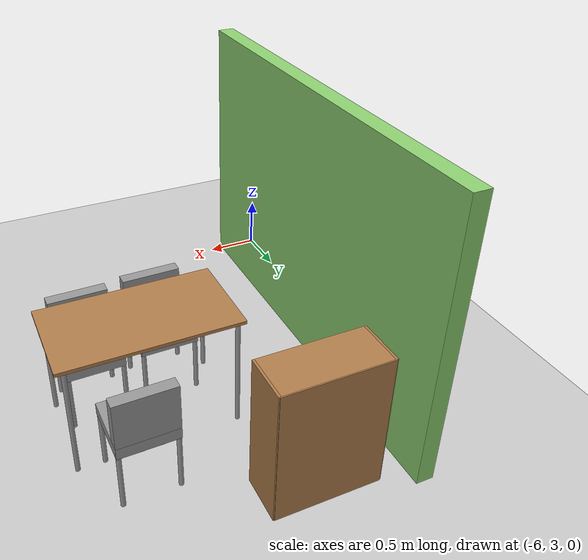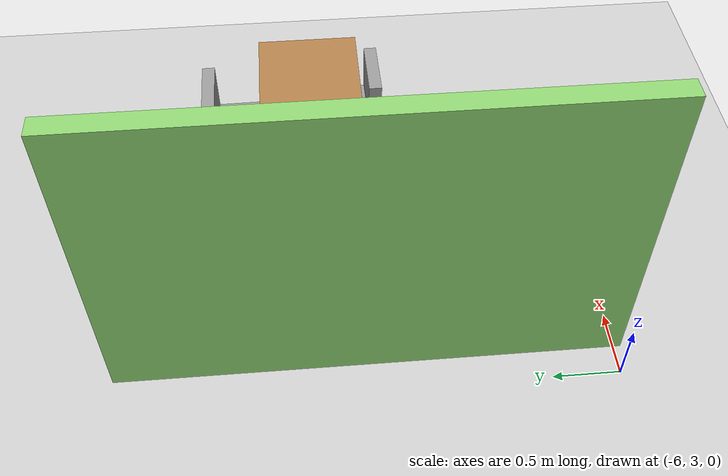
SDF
<sdf version="1.6">
 <world name="default">
  <model name="ground_plane">
   <static>1</static>
   <link name="link">
    <collision name="collision">
     <geometry><plane><normal>0 0 1</normal><size>100 100</size></plane></geometry>
     <surface>
      <contact><collide_bitmask>65535</collide_bitmask></contact>
      <friction><ode><mu>100</mu><mu2>50</mu2></ode></friction>
     </surface>
    </collision>
    <visual name="visual">
     <cast_shadows>0</cast_shadows>
     <geometry><plane><normal>0 0 1</normal><size>100 100</size></plane></geometry>
     <material>
      <script><uri>file://media/materials/scripts/gazebo.material</uri><name>Gazebo/Grey</name></script>
     </material>
    </visual>
   </link>
  </model>
  <model name="dunder_mifflin_scranton_full">
   <pose>4.5312 0.479645 0 0 -0 0</pose>
   <link name="Wall_19">
    <collision name="Wall_19_Collision">
     <geometry><box><size>3.75 0.15 2.5</size></box></geometry>
     <pose>0 0 1.25 0 -0 0</pose>
    </collision>
    <visual name="Wall_19_Visual">
     <pose>0 0 1.25 0 -0 0</pose>
     <geometry><box><size>3.75 0.15 2.5</size></box></geometry>
     <material>
      <script><uri>file://media/materials/scripts/gazebo.material</uri><name>Gazebo/Grey</name></script>
      <ambient>0.556863 0.823529 0.443137 1</ambient>
     </material>
     <meta><layer>0</layer></meta>
    </visual>
    <pose>-10.2322 4.33925 0 0 -0 -1.5708</pose>
   </link>
   <static>1</static>
  </model>
  <model name="table_9">
   <static>1</static>
   <link name="link">
    <collision name="surface">
     <pose>0 0 1 0 -0 0</pose>
     <geometry><box><size>1.5 0.8 0.03</size></box></geometry>
     <surface><friction><ode><mu>0.6</mu><mu2>0.6</mu2></ode></friction></surface>
    </collision>
    <visual name="visual1">
     <pose>0 0 1 0 -0 0</pose>
     <geometry><box><size>1.5 0.8 0.03</size></box></geometry>
     <material>
      <script><uri>file://media/materials/scripts/gazebo.material</uri><name>Gazebo/Wood</name></script>
     </material>
    </visual>
    <collision name="front_left_leg">
     <pose>0.68 0.38 0.5 0 -0 0</pose>
     <geometry><cylinder><radius>0.02</radius><length>1</length></cylinder></geometry>
    </collision>
    <visual name="front_left_leg">
     <pose>0.68 0.38 0.5 0 -0 0</pose>
     <geometry><cylinder><radius>0.02</radius><length>1</length></cylinder></geometry>
     <material>
      <script><uri>file://media/materials/scripts/gazebo.material</uri><name>Gazebo/Grey</name></script>
     </material>
    </visual>
    <collision name="front_right_leg">
     <pose>0.68 -0.38 0.5 0 -0 0</pose>
     <geometry><cylinder><radius>0.02</radius><length>1</length></cylinder></geometry>
    </collision>
    <visual name="front_right_leg">
     <pose>0.68 -0.38 0.5 0 -0 0</pose>
     <geometry><cylinder><radius>0.02</radius><length>1</length></cylinder></geometry>
     <material>
      <script><uri>file://media/materials/scripts/gazebo.material</uri><name>Gazebo/Grey</name></script>
     </material>
    </visual>
    <collision name="back_right_leg">
     <pose>-0.68 -0.38 0.5 0 -0 0</pose>
     <geometry><cylinder><radius>0.02</radius><length>1</length></cylinder></geometry>
    </collision>
    <visual name="back_right_leg">
     <pose>-0.68 -0.38 0.5 0 -0 0</pose>
     <geometry><cylinder><radius>0.02</radius><length>1</length></cylinder></geometry>
     <material>
      <script><uri>file://media/materials/scripts/gazebo.material</uri><name>Gazebo/Grey</name></script>
     </material>
    </visual>
    <collision name="back_left_leg">
     <pose>-0.68 0.38 0.5 0 -0 0</pose>
     <geometry><cylinder><radius>0.02</radius><length>1</length></cylinder></geometry>
    </collision>
    <visual name="back_left_leg">
     <pose>-0.68 0.38 0.5 0 -0 0</pose>
     <geometry><cylinder><radius>0.02</radius><length>1</length></cylinder></geometry>
     <material>
      <script><uri>file://media/materials/scripts/gazebo.material</uri><name>Gazebo/Grey</name></script>
     </material>
    </visual>
   </link>
   <pose>-3.98836 5.13001 0 0 -0 0</pose>
  </model>
  <model name="bookshelf">
   <static>1</static>
   <link name="link">
    <inertial><mass>1</mass></inertial>
    <collision name="back">
     <pose>0 0.005 0.6 0 -0 0</pose>
     <geometry><box><size>0.9 0.01 1.2</size></box></geometry>
    </collision>
    <visual name="visual1">
     <pose>0 0.005 0.6 0 -0 0</pose>
     <geometry><box><size>0.9 0.01 1.2</size></box></geometry>
     <material>
      <script><uri>file://media/materials/scripts/gazebo.material</uri><name>Gazebo/Wood</name></script>
     </material>
    </visual>
    <collision name="left_side">
     <pose>0.45 -0.195 0.6 0 -0 0</pose>
     <geometry><box><size>0.02 0.4 1.2</size></box></geometry>
    </collision>
    <visual name="visual2">
     <pose>0.45 -0.195 0.6 0 -0 0</pose>
     <geometry><box><size>0.02 0.4 1.2</size></box></geometry>
     <material>
      <script><uri>file://media/materials/scripts/gazebo.material</uri><name>Gazebo/Wood</name></script>
     </material>
    </visual>
    <collision name="right_side">
     <pose>-0.45 -0.195 0.6 0 -0 0</pose>
     <geometry><box><size>0.02 0.4 1.2</size></box></geometry>
    </collision>
    <visual name="visual3">
     <pose>-0.45 -0.195 0.6 0 -0 0</pose>
     <geometry><box><size>0.02 0.4 1.2</size></box></geometry>
     <material>
      <script><uri>file://media/materials/scripts/gazebo.material</uri><name>Gazebo/Wood</name></script>
     </material>
    </visual>
    <collision name="bottom">
     <pose>0 -0.195 0.03 0 -0 0</pose>
     <geometry><box><size>0.88 0.4 0.06</size></box></geometry>
    </collision>
    <visual name="visual4">
     <pose>0 -0.195 0.03 0 -0 0</pose>
     <geometry><box><size>0.88 0.4 0.06</size></box></geometry>
     <material>
      <script><uri>file://media/materials/scripts/gazebo.material</uri><name>Gazebo/Wood</name></script>
     </material>
    </visual>
    <collision name="top">
     <pose>0 -0.195 1.19 0 -0 0</pose>
     <geometry><box><size>0.88 0.4 0.02</size></box></geometry>
    </collision>
    <visual name="visual5">
     <pose>0 -0.195 1.19 0 -0 0</pose>
     <geometry><box><size>0.88 0.4 0.02</size></box></geometry>
     <material>
      <script><uri>file://media/materials/scripts/gazebo.material</uri><name>Gazebo/Wood</name></script>
     </material>
    </visual>
    <collision name="low_shelf">
     <pose>0 -0.195 0.43 0 -0 0</pose>
     <geometry><box><size>0.88 0.4 0.02</size></box></geometry>
    </collision>
    <visual name="visual6">
     <pose>0 -0.195 0.43 0 -0 0</pose>
     <geometry><box><size>0.88 0.4 0.02</size></box></geometry>
     <material>
      <script><uri>file://media/materials/scripts/gazebo.material</uri><name>Gazebo/Wood</name></script>
     </material>
    </visual>
    <collision name="high_shelf">
     <pose>0 -0.195 0.8 0 -0 0</pose>
     <geometry><box><size>0.88 0.4 0.02</size></box></geometry>
    </collision>
    <visual name="visual7">
     <pose>0 -0.195 0.8 0 -0 0</pose>
     <geometry><box><size>0.88 0.4 0.02</size></box></geometry>
     <material>
      <script><uri>file://media/materials/scripts/gazebo.material</uri><name>Gazebo/Wood</name></script>
     </material>
    </visual>
   </link>
   <pose>-4.93874 6.53859 0 0 -0 0</pose>
  </model>
  <model name="chair">
   <link name="link_0">
    <inertial>
     <mass>1</mass>
     <inertia><ixx>0.145833</ixx><ixy>0</ixy><ixz>0</ixz><iyy>0.145833</iyy><iyz>0</iyz><izz>0.125</izz></inertia>
    </inertial>
    <pose>-0.23 -0.19667 -0.280001 0 -0 0</pose>
    <visual name="visual">
     <geometry><cylinder><radius>0.02</radius><length>0.5</length></cylinder></geometry>
     <material>
      <lighting>1</lighting>
      <script><uri>file://media/materials/scripts/gazebo.material</uri><name>Gazebo/Grey</name></script>
      <shader type="vertex"><normal_map>__default__</normal_map></shader>
      <ambient>0.3 0.3 0.3 1</ambient>
      <diffuse>0.7 0.7 0.7 1</diffuse>
      <specular>0.01 0.01 0.01 1</specular>
      <emissive>0 0 0 1</emissive>
     </material>
    </visual>
    <collision name="collision">
     <geometry><cylinder><radius>0.02</radius><length>0.5</length></cylinder></geometry>
     <surface>
      <friction>
       <ode><mu>1</mu><mu2>1</mu2><fdir1>0 0 0</fdir1><slip1>0</slip1><slip2>0</slip2></ode>
       <torsional>
        <coefficient>1</coefficient>
        <patch_radius>0</patch_radius>
        <surface_radius>0</surface_radius>
        <use_patch_radius>1</use_patch_radius>
        <ode><slip>0</slip></ode>
       </torsional>
      </friction>
      <bounce><restitution_coefficient>0</restitution_coefficient><threshold>1e+06</threshold></bounce>
      <contact>
       <collide_without_contact>0</collide_without_contact>
       <collide_without_contact_bitmask>1</collide_without_contact_bitmask>
       <collide_bitmask>1</collide_bitmask>
       <ode>
        <soft_cfm>0</soft_cfm>
        <soft_erp>0.2</soft_erp>
        <kp>1e+13</kp>
        <kd>1</kd>
        <max_vel>0.01</max_vel>
        <min_depth>0</min_depth>
       </ode>
       <bullet>
        <split_impulse>1</split_impulse>
        <split_impulse_penetration_threshold>-0.01</split_impulse_penetration_threshold>
        <soft_cfm>0</soft_cfm>
        <soft_erp>0.2</soft_erp>
        <kp>1e+13</kp>
        <kd>1</kd>
       </bullet>
      </contact>
     </surface>
    </collision>
   </link>
   <link name="link_0_clone">
    <inertial>
     <mass>1</mass>
     <inertia><ixx>0.145833</ixx><ixy>0</ixy><ixz>0</ixz><iyy>0.145833</iyy><iyz>0</iyz><izz>0.125</izz></inertia>
    </inertial>
    <pose>0.23 -0.19667 -0.280001 0 -0 0</pose>
    <visual name="visual">
     <geometry><cylinder><radius>0.02</radius><length>0.5</length></cylinder></geometry>
     <material>
      <lighting>1</lighting>
      <script><uri>file://media/materials/scripts/gazebo.material</uri><name>Gazebo/Grey</name></script>
      <shader type="vertex"><normal_map>__default__</normal_map></shader>
      <ambient>0.3 0.3 0.3 1</ambient>
      <diffuse>0.7 0.7 0.7 1</diffuse>
      <specular>0.01 0.01 0.01 1</specular>
      <emissive>0 0 0 1</emissive>
     </material>
    </visual>
    <collision name="collision">
     <geometry><cylinder><radius>0.02</radius><length>0.5</length></cylinder></geometry>
     <surface>
      <friction>
       <ode><mu>1</mu><mu2>1</mu2><fdir1>0 0 0</fdir1><slip1>0</slip1><slip2>0</slip2></ode>
       <torsional>
        <coefficient>1</coefficient>
        <patch_radius>0</patch_radius>
        <surface_radius>0</surface_radius>
        <use_patch_radius>1</use_patch_radius>
        <ode><slip>0</slip></ode>
       </torsional>
      </friction>
      <bounce><restitution_coefficient>0</restitution_coefficient><threshold>1e+06</threshold></bounce>
      <contact>
       <collide_without_contact>0</collide_without_contact>
       <collide_without_contact_bitmask>1</collide_without_contact_bitmask>
       <collide_bitmask>1</collide_bitmask>
       <ode>
        <soft_cfm>0</soft_cfm>
        <soft_erp>0.2</soft_erp>
        <kp>1e+13</kp>
        <kd>1</kd>
        <max_vel>0.01</max_vel>
        <min_depth>0</min_depth>
       </ode>
       <bullet>
        <split_impulse>1</split_impulse>
        <split_impulse_penetration_threshold>-0.01</split_impulse_penetration_threshold>
        <soft_cfm>0</soft_cfm>
        <soft_erp>0.2</soft_erp>
        <kp>1e+13</kp>
        <kd>1</kd>
       </bullet>
      </contact>
     </surface>
    </collision>
   </link>
   <link name="link_0_clone_0">
    <inertial>
     <mass>1</mass>
     <inertia><ixx>0.145833</ixx><ixy>0</ixy><ixz>0</ixz><iyy>0.145833</iyy><iyz>0</iyz><izz>0.125</izz></inertia>
    </inertial>
    <pose>0.23 0.26333 -0.280001 0 -0 0</pose>
    <visual name="visual">
     <geometry><cylinder><radius>0.02</radius><length>0.5</length></cylinder></geometry>
     <material>
      <lighting>1</lighting>
      <script><uri>file://media/materials/scripts/gazebo.material</uri><name>Gazebo/Grey</name></script>
      <shader type="vertex"><normal_map>__default__</normal_map></shader>
      <ambient>0.3 0.3 0.3 1</ambient>
      <diffuse>0.7 0.7 0.7 1</diffuse>
      <specular>0.01 0.01 0.01 1</specular>
      <emissive>0 0 0 1</emissive>
     </material>
    </visual>
    <collision name="collision">
     <geometry><cylinder><radius>0.02</radius><length>0.5</length></cylinder></geometry>
     <surface>
      <friction>
       <ode><mu>1</mu><mu2>1</mu2><fdir1>0 0 0</fdir1><slip1>0</slip1><slip2>0</slip2></ode>
       <torsional>
        <coefficient>1</coefficient>
        <patch_radius>0</patch_radius>
        <surface_radius>0</surface_radius>
        <use_patch_radius>1</use_patch_radius>
        <ode><slip>0</slip></ode>
       </torsional>
      </friction>
      <bounce><restitution_coefficient>0</restitution_coefficient><threshold>1e+06</threshold></bounce>
      <contact>
       <collide_without_contact>0</collide_without_contact>
       <collide_without_contact_bitmask>1</collide_without_contact_bitmask>
       <collide_bitmask>1</collide_bitmask>
       <ode>
        <soft_cfm>0</soft_cfm>
        <soft_erp>0.2</soft_erp>
        <kp>1e+13</kp>
        <kd>1</kd>
        <max_vel>0.01</max_vel>
        <min_depth>0</min_depth>
       </ode>
       <bullet>
        <split_impulse>1</split_impulse>
        <split_impulse_penetration_threshold>-0.01</split_impulse_penetration_threshold>
        <soft_cfm>0</soft_cfm>
        <soft_erp>0.2</soft_erp>
        <kp>1e+13</kp>
        <kd>1</kd>
       </bullet>
      </contact>
     </surface>
    </collision>
   </link>
   <link name="link_0_clone_1">
    <inertial>
     <mass>1</mass>
     <inertia><ixx>0.145833</ixx><ixy>0</ixy><ixz>0</ixz><iyy>0.145833</iyy><iyz>0</iyz><izz>0.125</izz></inertia>
    </inertial>
    <pose>-0.23 0.26333 -0.280001 0 -0 0</pose>
    <visual name="visual">
     <geometry><cylinder><radius>0.02</radius><length>0.5</length></cylinder></geometry>
     <material>
      <lighting>1</lighting>
      <script><uri>file://media/materials/scripts/gazebo.material</uri><name>Gazebo/Grey</name></script>
      <shader type="vertex"><normal_map>__default__</normal_map></shader>
      <ambient>0.3 0.3 0.3 1</ambient>
      <diffuse>0.7 0.7 0.7 1</diffuse>
      <specular>0.01 0.01 0.01 1</specular>
      <emissive>0 0 0 1</emissive>
     </material>
    </visual>
    <collision name="collision">
     <geometry><cylinder><radius>0.02</radius><length>0.5</length></cylinder></geometry>
     <surface>
      <friction>
       <ode><mu>1</mu><mu2>1</mu2><fdir1>0 0 0</fdir1><slip1>0</slip1><slip2>0</slip2></ode>
       <torsional>
        <coefficient>1</coefficient>
        <patch_radius>0</patch_radius>
        <surface_radius>0</surface_radius>
        <use_patch_radius>1</use_patch_radius>
        <ode><slip>0</slip></ode>
       </torsional>
      </friction>
      <bounce><restitution_coefficient>0</restitution_coefficient><threshold>1e+06</threshold></bounce>
      <contact>
       <collide_without_contact>0</collide_without_contact>
       <collide_without_contact_bitmask>1</collide_without_contact_bitmask>
       <collide_bitmask>1</collide_bitmask>
       <ode>
        <soft_cfm>0</soft_cfm>
        <soft_erp>0.2</soft_erp>
        <kp>1e+13</kp>
        <kd>1</kd>
        <max_vel>0.01</max_vel>
        <min_depth>0</min_depth>
       </ode>
       <bullet>
        <split_impulse>1</split_impulse>
        <split_impulse_penetration_threshold>-0.01</split_impulse_penetration_threshold>
        <soft_cfm>0</soft_cfm>
        <soft_erp>0.2</soft_erp>
        <kp>1e+13</kp>
        <kd>1</kd>
       </bullet>
      </contact>
     </surface>
    </collision>
   </link>
   <link name="link_2">
    <inertial>
     <mass>1</mass>
     <inertia>
      <ixx>0.166667</ixx>
      <ixy>0</ixy>
      <ixz>0</ixz>
      <iyy>0.166667</iyy>
      <iyz>0</iyz>
      <izz>0.166667</izz>
     </inertia>
    </inertial>
    <pose>0 0.03333 0.019999 0 -0 0</pose>
    <visual name="visual">
     <geometry><box><size>0.5 0.5 0.1</size></box></geometry>
     <material>
      <lighting>1</lighting>
      <script><uri>file://media/materials/scripts/gazebo.material</uri><name>Gazebo/Grey</name></script>
      <shader type="vertex"><normal_map>__default__</normal_map></shader>
      <ambient>0.3 0.3 0.3 1</ambient>
      <diffuse>0.7 0.7 0.7 1</diffuse>
      <specular>0.01 0.01 0.01 1</specular>
      <emissive>0 0 0 1</emissive>
     </material>
    </visual>
    <collision name="collision">
     <geometry><box><size>0.5 0.5 0.1</size></box></geometry>
     <surface>
      <friction>
       <ode><mu>1</mu><mu2>1</mu2><fdir1>0 0 0</fdir1><slip1>0</slip1><slip2>0</slip2></ode>
       <torsional>
        <coefficient>1</coefficient>
        <patch_radius>0</patch_radius>
        <surface_radius>0</surface_radius>
        <use_patch_radius>1</use_patch_radius>
        <ode><slip>0</slip></ode>
       </torsional>
      </friction>
      <bounce><restitution_coefficient>0</restitution_coefficient><threshold>1e+06</threshold></bounce>
      <contact>
       <collide_without_contact>0</collide_without_contact>
       <collide_without_contact_bitmask>1</collide_without_contact_bitmask>
       <collide_bitmask>1</collide_bitmask>
       <ode>
        <soft_cfm>0</soft_cfm>
        <soft_erp>0.2</soft_erp>
        <kp>1e+13</kp>
        <kd>1</kd>
        <max_vel>0.01</max_vel>
        <min_depth>0</min_depth>
       </ode>
       <bullet>
        <split_impulse>1</split_impulse>
        <split_impulse_penetration_threshold>-0.01</split_impulse_penetration_threshold>
        <soft_cfm>0</soft_cfm>
        <soft_erp>0.2</soft_erp>
        <kp>1e+13</kp>
        <kd>1</kd>
       </bullet>
      </contact>
     </surface>
    </collision>
   </link>
   <link name="link_2_clone">
    <inertial>
     <mass>1</mass>
     <inertia>
      <ixx>0.166667</ixx>
      <ixy>0</ixy>
      <ixz>0</ixz>
      <iyy>0.166667</iyy>
      <iyz>0</iyz>
      <izz>0.166667</izz>
     </inertia>
    </inertial>
    <pose>0 -0.166646 0.220004 1.5707 -0 0</pose>
    <visual name="visual">
     <geometry><box><size>0.5 0.5 0.1</size></box></geometry>
     <material>
      <lighting>1</lighting>
      <script><uri>file://media/materials/scripts/gazebo.material</uri><name>Gazebo/Grey</name></script>
      <shader type="vertex"><normal_map>__default__</normal_map></shader>
      <ambient>0.3 0.3 0.3 1</ambient>
      <diffuse>0.7 0.7 0.7 1</diffuse>
      <specular>0.01 0.01 0.01 1</specular>
      <emissive>0 0 0 1</emissive>
     </material>
    </visual>
    <collision name="collision">
     <geometry><box><size>0.5 0.5 0.1</size></box></geometry>
     <surface>
      <friction>
       <ode><mu>1</mu><mu2>1</mu2><fdir1>0 0 0</fdir1><slip1>0</slip1><slip2>0</slip2></ode>
       <torsional>
        <coefficient>1</coefficient>
        <patch_radius>0</patch_radius>
        <surface_radius>0</surface_radius>
        <use_patch_radius>1</use_patch_radius>
        <ode><slip>0</slip></ode>
       </torsional>
      </friction>
      <bounce><restitution_coefficient>0</restitution_coefficient><threshold>1e+06</threshold></bounce>
      <contact>
       <collide_without_contact>0</collide_without_contact>
       <collide_without_contact_bitmask>1</collide_without_contact_bitmask>
       <collide_bitmask>1</collide_bitmask>
       <ode>
        <soft_cfm>0</soft_cfm>
        <soft_erp>0.2</soft_erp>
        <kp>1e+13</kp>
        <kd>1</kd>
        <max_vel>0.01</max_vel>
        <min_depth>0</min_depth>
       </ode>
       <bullet>
        <split_impulse>1</split_impulse>
        <split_impulse_penetration_threshold>-0.01</split_impulse_penetration_threshold>
        <soft_cfm>0</soft_cfm>
        <soft_erp>0.2</soft_erp>
        <kp>1e+13</kp>
        <kd>1</kd>
       </bullet>
      </contact>
     </surface>
    </collision>
   </link>
   <joint name="link_0_clone_JOINT_2" type="fixed">
    <parent>link_2</parent>
    <child>link_0_clone</child>
    <physics>
     <ode><limit><cfm>0</cfm><erp>0.2</erp></limit><suspension><cfm>0</cfm><erp>0.2</erp></suspension></ode>
    </physics>
   </joint>
   <joint name="link_2_JOINT_1" type="fixed">
    <parent>link_2</parent>
    <child>link_0</child>
    <physics>
     <ode><limit><cfm>0</cfm><erp>0.2</erp></limit><suspension><cfm>0</cfm><erp>0.2</erp></suspension></ode>
    </physics>
   </joint>
   <joint name="link_2_JOINT_3" type="fixed">
    <parent>link_2</parent>
    <child>link_0_clone_0</child>
    <physics>
     <ode><limit><cfm>0</cfm><erp>0.2</erp></limit><suspension><cfm>0</cfm><erp>0.2</erp></suspension></ode>
    </physics>
   </joint>
   <joint name="link_2_JOINT_4" type="fixed">
    <parent>link_2</parent>
    <child>link_0_clone_1</child>
    <physics>
     <ode><limit><cfm>0</cfm><erp>0.2</erp></limit><suspension><cfm>0</cfm><erp>0.2</erp></suspension></ode>
    </physics>
   </joint>
   <joint name="link_2_JOINT_5" type="fixed">
    <parent>link_2</parent>
    <child>link_2_clone</child>
    <physics>
     <ode><limit><cfm>0</cfm><erp>0.2</erp></limit><suspension><cfm>0</cfm><erp>0.2</erp></suspension></ode>
    </physics>
   </joint>
   <static>0</static>
   <pose>-3.6243 4.78236 0.529996 0 -0 0.011899</pose>
  </model>
  <model name="chair_14">
   <link name="link_0">
    <inertial>
     <mass>1</mass>
     <inertia><ixx>0.145833</ixx><ixy>0</ixy><ixz>0</ixz><iyy>0.145833</iyy><iyz>0</iyz><izz>0.125</izz></inertia>
    </inertial>
    <pose>-0.23 -0.19667 -0.280001 0 -0 0</pose>
    <visual name="visual">
     <geometry><cylinder><radius>0.02</radius><length>0.5</length></cylinder></geometry>
     <material>
      <lighting>1</lighting>
      <script><uri>file://media/materials/scripts/gazebo.material</uri><name>Gazebo/Grey</name></script>
      <shader type="vertex"><normal_map>__default__</normal_map></shader>
      <ambient>0.3 0.3 0.3 1</ambient>
      <diffuse>0.7 0.7 0.7 1</diffuse>
      <specular>0.01 0.01 0.01 1</specular>
      <emissive>0 0 0 1</emissive>
     </material>
    </visual>
    <collision name="collision">
     <geometry><cylinder><radius>0.02</radius><length>0.5</length></cylinder></geometry>
     <surface>
      <friction>
       <ode><mu>1</mu><mu2>1</mu2><fdir1>0 0 0</fdir1><slip1>0</slip1><slip2>0</slip2></ode>
       <torsional>
        <coefficient>1</coefficient>
        <patch_radius>0</patch_radius>
        <surface_radius>0</surface_radius>
        <use_patch_radius>1</use_patch_radius>
        <ode><slip>0</slip></ode>
       </torsional>
      </friction>
      <bounce><restitution_coefficient>0</restitution_coefficient><threshold>1e+06</threshold></bounce>
      <contact>
       <collide_without_contact>0</collide_without_contact>
       <collide_without_contact_bitmask>1</collide_without_contact_bitmask>
       <collide_bitmask>1</collide_bitmask>
       <ode>
        <soft_cfm>0</soft_cfm>
        <soft_erp>0.2</soft_erp>
        <kp>1e+13</kp>
        <kd>1</kd>
        <max_vel>0.01</max_vel>
        <min_depth>0</min_depth>
       </ode>
       <bullet>
        <split_impulse>1</split_impulse>
        <split_impulse_penetration_threshold>-0.01</split_impulse_penetration_threshold>
        <soft_cfm>0</soft_cfm>
        <soft_erp>0.2</soft_erp>
        <kp>1e+13</kp>
        <kd>1</kd>
       </bullet>
      </contact>
     </surface>
    </collision>
   </link>
   <link name="link_0_clone">
    <inertial>
     <mass>1</mass>
     <inertia><ixx>0.145833</ixx><ixy>0</ixy><ixz>0</ixz><iyy>0.145833</iyy><iyz>0</iyz><izz>0.125</izz></inertia>
    </inertial>
    <pose>0.23 -0.19667 -0.280001 0 -0 0</pose>
    <visual name="visual">
     <geometry><cylinder><radius>0.02</radius><length>0.5</length></cylinder></geometry>
     <material>
      <lighting>1</lighting>
      <script><uri>file://media/materials/scripts/gazebo.material</uri><name>Gazebo/Grey</name></script>
      <shader type="vertex"><normal_map>__default__</normal_map></shader>
      <ambient>0.3 0.3 0.3 1</ambient>
      <diffuse>0.7 0.7 0.7 1</diffuse>
      <specular>0.01 0.01 0.01 1</specular>
      <emissive>0 0 0 1</emissive>
     </material>
    </visual>
    <collision name="collision">
     <geometry><cylinder><radius>0.02</radius><length>0.5</length></cylinder></geometry>
     <surface>
      <friction>
       <ode><mu>1</mu><mu2>1</mu2><fdir1>0 0 0</fdir1><slip1>0</slip1><slip2>0</slip2></ode>
       <torsional>
        <coefficient>1</coefficient>
        <patch_radius>0</patch_radius>
        <surface_radius>0</surface_radius>
        <use_patch_radius>1</use_patch_radius>
        <ode><slip>0</slip></ode>
       </torsional>
      </friction>
      <bounce><restitution_coefficient>0</restitution_coefficient><threshold>1e+06</threshold></bounce>
      <contact>
       <collide_without_contact>0</collide_without_contact>
       <collide_without_contact_bitmask>1</collide_without_contact_bitmask>
       <collide_bitmask>1</collide_bitmask>
       <ode>
        <soft_cfm>0</soft_cfm>
        <soft_erp>0.2</soft_erp>
        <kp>1e+13</kp>
        <kd>1</kd>
        <max_vel>0.01</max_vel>
        <min_depth>0</min_depth>
       </ode>
       <bullet>
        <split_impulse>1</split_impulse>
        <split_impulse_penetration_threshold>-0.01</split_impulse_penetration_threshold>
        <soft_cfm>0</soft_cfm>
        <soft_erp>0.2</soft_erp>
        <kp>1e+13</kp>
        <kd>1</kd>
       </bullet>
      </contact>
     </surface>
    </collision>
   </link>
   <link name="link_0_clone_0">
    <inertial>
     <mass>1</mass>
     <inertia><ixx>0.145833</ixx><ixy>0</ixy><ixz>0</ixz><iyy>0.145833</iyy><iyz>0</iyz><izz>0.125</izz></inertia>
    </inertial>
    <pose>0.23 0.26333 -0.280001 0 -0 0</pose>
    <visual name="visual">
     <geometry><cylinder><radius>0.02</radius><length>0.5</length></cylinder></geometry>
     <material>
      <lighting>1</lighting>
      <script><uri>file://media/materials/scripts/gazebo.material</uri><name>Gazebo/Grey</name></script>
      <shader type="vertex"><normal_map>__default__</normal_map></shader>
      <ambient>0.3 0.3 0.3 1</ambient>
      <diffuse>0.7 0.7 0.7 1</diffuse>
      <specular>0.01 0.01 0.01 1</specular>
      <emissive>0 0 0 1</emissive>
     </material>
    </visual>
    <collision name="collision">
     <geometry><cylinder><radius>0.02</radius><length>0.5</length></cylinder></geometry>
     <surface>
      <friction>
       <ode><mu>1</mu><mu2>1</mu2><fdir1>0 0 0</fdir1><slip1>0</slip1><slip2>0</slip2></ode>
       <torsional>
        <coefficient>1</coefficient>
        <patch_radius>0</patch_radius>
        <surface_radius>0</surface_radius>
        <use_patch_radius>1</use_patch_radius>
        <ode><slip>0</slip></ode>
       </torsional>
      </friction>
      <bounce><restitution_coefficient>0</restitution_coefficient><threshold>1e+06</threshold></bounce>
      <contact>
       <collide_without_contact>0</collide_without_contact>
       <collide_without_contact_bitmask>1</collide_without_contact_bitmask>
       <collide_bitmask>1</collide_bitmask>
       <ode>
        <soft_cfm>0</soft_cfm>
        <soft_erp>0.2</soft_erp>
        <kp>1e+13</kp>
        <kd>1</kd>
        <max_vel>0.01</max_vel>
        <min_depth>0</min_depth>
       </ode>
       <bullet>
        <split_impulse>1</split_impulse>
        <split_impulse_penetration_threshold>-0.01</split_impulse_penetration_threshold>
        <soft_cfm>0</soft_cfm>
        <soft_erp>0.2</soft_erp>
        <kp>1e+13</kp>
        <kd>1</kd>
       </bullet>
      </contact>
     </surface>
    </collision>
   </link>
   <link name="link_0_clone_1">
    <inertial>
     <mass>1</mass>
     <inertia><ixx>0.145833</ixx><ixy>0</ixy><ixz>0</ixz><iyy>0.145833</iyy><iyz>0</iyz><izz>0.125</izz></inertia>
    </inertial>
    <pose>-0.23 0.26333 -0.280001 0 -0 0</pose>
    <visual name="visual">
     <geometry><cylinder><radius>0.02</radius><length>0.5</length></cylinder></geometry>
     <material>
      <lighting>1</lighting>
      <script><uri>file://media/materials/scripts/gazebo.material</uri><name>Gazebo/Grey</name></script>
      <shader type="vertex"><normal_map>__default__</normal_map></shader>
      <ambient>0.3 0.3 0.3 1</ambient>
      <diffuse>0.7 0.7 0.7 1</diffuse>
      <specular>0.01 0.01 0.01 1</specular>
      <emissive>0 0 0 1</emissive>
     </material>
    </visual>
    <collision name="collision">
     <geometry><cylinder><radius>0.02</radius><length>0.5</length></cylinder></geometry>
     <surface>
      <friction>
       <ode><mu>1</mu><mu2>1</mu2><fdir1>0 0 0</fdir1><slip1>0</slip1><slip2>0</slip2></ode>
       <torsional>
        <coefficient>1</coefficient>
        <patch_radius>0</patch_radius>
        <surface_radius>0</surface_radius>
        <use_patch_radius>1</use_patch_radius>
        <ode><slip>0</slip></ode>
       </torsional>
      </friction>
      <bounce><restitution_coefficient>0</restitution_coefficient><threshold>1e+06</threshold></bounce>
      <contact>
       <collide_without_contact>0</collide_without_contact>
       <collide_without_contact_bitmask>1</collide_without_contact_bitmask>
       <collide_bitmask>1</collide_bitmask>
       <ode>
        <soft_cfm>0</soft_cfm>
        <soft_erp>0.2</soft_erp>
        <kp>1e+13</kp>
        <kd>1</kd>
        <max_vel>0.01</max_vel>
        <min_depth>0</min_depth>
       </ode>
       <bullet>
        <split_impulse>1</split_impulse>
        <split_impulse_penetration_threshold>-0.01</split_impulse_penetration_threshold>
        <soft_cfm>0</soft_cfm>
        <soft_erp>0.2</soft_erp>
        <kp>1e+13</kp>
        <kd>1</kd>
       </bullet>
      </contact>
     </surface>
    </collision>
   </link>
   <link name="link_2">
    <inertial>
     <mass>1</mass>
     <inertia>
      <ixx>0.166667</ixx>
      <ixy>0</ixy>
      <ixz>0</ixz>
      <iyy>0.166667</iyy>
      <iyz>0</iyz>
      <izz>0.166667</izz>
     </inertia>
    </inertial>
    <pose>0 0.03333 0.019999 0 -0 0</pose>
    <visual name="visual">
     <geometry><box><size>0.5 0.5 0.1</size></box></geometry>
     <material>
      <lighting>1</lighting>
      <script><uri>file://media/materials/scripts/gazebo.material</uri><name>Gazebo/Grey</name></script>
      <shader type="vertex"><normal_map>__default__</normal_map></shader>
      <ambient>0.3 0.3 0.3 1</ambient>
      <diffuse>0.7 0.7 0.7 1</diffuse>
      <specular>0.01 0.01 0.01 1</specular>
      <emissive>0 0 0 1</emissive>
     </material>
    </visual>
    <collision name="collision">
     <geometry><box><size>0.5 0.5 0.1</size></box></geometry>
     <surface>
      <friction>
       <ode><mu>1</mu><mu2>1</mu2><fdir1>0 0 0</fdir1><slip1>0</slip1><slip2>0</slip2></ode>
       <torsional>
        <coefficient>1</coefficient>
        <patch_radius>0</patch_radius>
        <surface_radius>0</surface_radius>
        <use_patch_radius>1</use_patch_radius>
        <ode><slip>0</slip></ode>
       </torsional>
      </friction>
      <bounce><restitution_coefficient>0</restitution_coefficient><threshold>1e+06</threshold></bounce>
      <contact>
       <collide_without_contact>0</collide_without_contact>
       <collide_without_contact_bitmask>1</collide_without_contact_bitmask>
       <collide_bitmask>1</collide_bitmask>
       <ode>
        <soft_cfm>0</soft_cfm>
        <soft_erp>0.2</soft_erp>
        <kp>1e+13</kp>
        <kd>1</kd>
        <max_vel>0.01</max_vel>
        <min_depth>0</min_depth>
       </ode>
       <bullet>
        <split_impulse>1</split_impulse>
        <split_impulse_penetration_threshold>-0.01</split_impulse_penetration_threshold>
        <soft_cfm>0</soft_cfm>
        <soft_erp>0.2</soft_erp>
        <kp>1e+13</kp>
        <kd>1</kd>
       </bullet>
      </contact>
     </surface>
    </collision>
   </link>
   <link name="link_2_clone">
    <inertial>
     <mass>1</mass>
     <inertia>
      <ixx>0.166667</ixx>
      <ixy>0</ixy>
      <ixz>0</ixz>
      <iyy>0.166667</iyy>
      <iyz>0</iyz>
      <izz>0.166667</izz>
     </inertia>
    </inertial>
    <pose>0 -0.166646 0.220004 1.5707 -0 0</pose>
    <visual name="visual">
     <geometry><box><size>0.5 0.5 0.1</size></box></geometry>
     <material>
      <lighting>1</lighting>
      <script><uri>file://media/materials/scripts/gazebo.material</uri><name>Gazebo/Grey</name></script>
      <shader type="vertex"><normal_map>__default__</normal_map></shader>
      <ambient>0.3 0.3 0.3 1</ambient>
      <diffuse>0.7 0.7 0.7 1</diffuse>
      <specular>0.01 0.01 0.01 1</specular>
      <emissive>0 0 0 1</emissive>
     </material>
    </visual>
    <collision name="collision">
     <geometry><box><size>0.5 0.5 0.1</size></box></geometry>
     <surface>
      <friction>
       <ode><mu>1</mu><mu2>1</mu2><fdir1>0 0 0</fdir1><slip1>0</slip1><slip2>0</slip2></ode>
       <torsional>
        <coefficient>1</coefficient>
        <patch_radius>0</patch_radius>
        <surface_radius>0</surface_radius>
        <use_patch_radius>1</use_patch_radius>
        <ode><slip>0</slip></ode>
       </torsional>
      </friction>
      <bounce><restitution_coefficient>0</restitution_coefficient><threshold>1e+06</threshold></bounce>
      <contact>
       <collide_without_contact>0</collide_without_contact>
       <collide_without_contact_bitmask>1</collide_without_contact_bitmask>
       <collide_bitmask>1</collide_bitmask>
       <ode>
        <soft_cfm>0</soft_cfm>
        <soft_erp>0.2</soft_erp>
        <kp>1e+13</kp>
        <kd>1</kd>
        <max_vel>0.01</max_vel>
        <min_depth>0</min_depth>
       </ode>
       <bullet>
        <split_impulse>1</split_impulse>
        <split_impulse_penetration_threshold>-0.01</split_impulse_penetration_threshold>
        <soft_cfm>0</soft_cfm>
        <soft_erp>0.2</soft_erp>
        <kp>1e+13</kp>
        <kd>1</kd>
       </bullet>
      </contact>
     </surface>
    </collision>
   </link>
   <joint name="link_0_clone_JOINT_2" type="fixed">
    <parent>link_2</parent>
    <child>link_0_clone</child>
    <physics>
     <ode><limit><cfm>0</cfm><erp>0.2</erp></limit><suspension><cfm>0</cfm><erp>0.2</erp></suspension></ode>
    </physics>
   </joint>
   <joint name="link_2_JOINT_1" type="fixed">
    <parent>link_2</parent>
    <child>link_0</child>
    <physics>
     <ode><limit><cfm>0</cfm><erp>0.2</erp></limit><suspension><cfm>0</cfm><erp>0.2</erp></suspension></ode>
    </physics>
   </joint>
   <joint name="link_2_JOINT_3" type="fixed">
    <parent>link_2</parent>
    <child>link_0_clone_0</child>
    <physics>
     <ode><limit><cfm>0</cfm><erp>0.2</erp></limit><suspension><cfm>0</cfm><erp>0.2</erp></suspension></ode>
    </physics>
   </joint>
   <joint name="link_2_JOINT_4" type="fixed">
    <parent>link_2</parent>
    <child>link_0_clone_1</child>
    <physics>
     <ode><limit><cfm>0</cfm><erp>0.2</erp></limit><suspension><cfm>0</cfm><erp>0.2</erp></suspension></ode>
    </physics>
   </joint>
   <joint name="link_2_JOINT_5" type="fixed">
    <parent>link_2</parent>
    <child>link_2_clone</child>
    <physics>
     <ode><limit><cfm>0</cfm><erp>0.2</erp></limit><suspension><cfm>0</cfm><erp>0.2</erp></suspension></ode>
    </physics>
   </joint>
   <static>0</static>
   <pose>-4.26999 4.73276 0.529996 1e-06 -0 0.011834</pose>
  </model>
  <model name="chair_15">
   <link name="link_0">
    <inertial>
     <mass>1</mass>
     <inertia><ixx>0.145833</ixx><ixy>0</ixy><ixz>0</ixz><iyy>0.145833</iyy><iyz>0</iyz><izz>0.125</izz></inertia>
    </inertial>
    <pose>-0.23 -0.19667 -0.280001 0 -0 0</pose>
    <visual name="visual">
     <geometry><cylinder><radius>0.02</radius><length>0.5</length></cylinder></geometry>
     <material>
      <lighting>1</lighting>
      <script><uri>file://media/materials/scripts/gazebo.material</uri><name>Gazebo/Grey</name></script>
      <shader type="vertex"><normal_map>__default__</normal_map></shader>
      <ambient>0.3 0.3 0.3 1</ambient>
      <diffuse>0.7 0.7 0.7 1</diffuse>
      <specular>0.01 0.01 0.01 1</specular>
      <emissive>0 0 0 1</emissive>
     </material>
    </visual>
    <collision name="collision">
     <geometry><cylinder><radius>0.02</radius><length>0.5</length></cylinder></geometry>
     <surface>
      <friction>
       <ode><mu>1</mu><mu2>1</mu2><fdir1>0 0 0</fdir1><slip1>0</slip1><slip2>0</slip2></ode>
       <torsional>
        <coefficient>1</coefficient>
        <patch_radius>0</patch_radius>
        <surface_radius>0</surface_radius>
        <use_patch_radius>1</use_patch_radius>
        <ode><slip>0</slip></ode>
       </torsional>
      </friction>
      <bounce><restitution_coefficient>0</restitution_coefficient><threshold>1e+06</threshold></bounce>
      <contact>
       <collide_without_contact>0</collide_without_contact>
       <collide_without_contact_bitmask>1</collide_without_contact_bitmask>
       <collide_bitmask>1</collide_bitmask>
       <ode>
        <soft_cfm>0</soft_cfm>
        <soft_erp>0.2</soft_erp>
        <kp>1e+13</kp>
        <kd>1</kd>
        <max_vel>0.01</max_vel>
        <min_depth>0</min_depth>
       </ode>
       <bullet>
        <split_impulse>1</split_impulse>
        <split_impulse_penetration_threshold>-0.01</split_impulse_penetration_threshold>
        <soft_cfm>0</soft_cfm>
        <soft_erp>0.2</soft_erp>
        <kp>1e+13</kp>
        <kd>1</kd>
       </bullet>
      </contact>
     </surface>
    </collision>
   </link>
   <link name="link_0_clone">
    <inertial>
     <mass>1</mass>
     <inertia><ixx>0.145833</ixx><ixy>0</ixy><ixz>0</ixz><iyy>0.145833</iyy><iyz>0</iyz><izz>0.125</izz></inertia>
    </inertial>
    <pose>0.23 -0.19667 -0.280001 0 -0 0</pose>
    <visual name="visual">
     <geometry><cylinder><radius>0.02</radius><length>0.5</length></cylinder></geometry>
     <material>
      <lighting>1</lighting>
      <script><uri>file://media/materials/scripts/gazebo.material</uri><name>Gazebo/Grey</name></script>
      <shader type="vertex"><normal_map>__default__</normal_map></shader>
      <ambient>0.3 0.3 0.3 1</ambient>
      <diffuse>0.7 0.7 0.7 1</diffuse>
      <specular>0.01 0.01 0.01 1</specular>
      <emissive>0 0 0 1</emissive>
     </material>
    </visual>
    <collision name="collision">
     <geometry><cylinder><radius>0.02</radius><length>0.5</length></cylinder></geometry>
     <surface>
      <friction>
       <ode><mu>1</mu><mu2>1</mu2><fdir1>0 0 0</fdir1><slip1>0</slip1><slip2>0</slip2></ode>
       <torsional>
        <coefficient>1</coefficient>
        <patch_radius>0</patch_radius>
        <surface_radius>0</surface_radius>
        <use_patch_radius>1</use_patch_radius>
        <ode><slip>0</slip></ode>
       </torsional>
      </friction>
      <bounce><restitution_coefficient>0</restitution_coefficient><threshold>1e+06</threshold></bounce>
      <contact>
       <collide_without_contact>0</collide_without_contact>
       <collide_without_contact_bitmask>1</collide_without_contact_bitmask>
       <collide_bitmask>1</collide_bitmask>
       <ode>
        <soft_cfm>0</soft_cfm>
        <soft_erp>0.2</soft_erp>
        <kp>1e+13</kp>
        <kd>1</kd>
        <max_vel>0.01</max_vel>
        <min_depth>0</min_depth>
       </ode>
       <bullet>
        <split_impulse>1</split_impulse>
        <split_impulse_penetration_threshold>-0.01</split_impulse_penetration_threshold>
        <soft_cfm>0</soft_cfm>
        <soft_erp>0.2</soft_erp>
        <kp>1e+13</kp>
        <kd>1</kd>
       </bullet>
      </contact>
     </surface>
    </collision>
   </link>
   <link name="link_0_clone_0">
    <inertial>
     <mass>1</mass>
     <inertia><ixx>0.145833</ixx><ixy>0</ixy><ixz>0</ixz><iyy>0.145833</iyy><iyz>0</iyz><izz>0.125</izz></inertia>
    </inertial>
    <pose>0.23 0.26333 -0.280001 0 -0 0</pose>
    <visual name="visual">
     <geometry><cylinder><radius>0.02</radius><length>0.5</length></cylinder></geometry>
     <material>
      <lighting>1</lighting>
      <script><uri>file://media/materials/scripts/gazebo.material</uri><name>Gazebo/Grey</name></script>
      <shader type="vertex"><normal_map>__default__</normal_map></shader>
      <ambient>0.3 0.3 0.3 1</ambient>
      <diffuse>0.7 0.7 0.7 1</diffuse>
      <specular>0.01 0.01 0.01 1</specular>
      <emissive>0 0 0 1</emissive>
     </material>
    </visual>
    <collision name="collision">
     <geometry><cylinder><radius>0.02</radius><length>0.5</length></cylinder></geometry>
     <surface>
      <friction>
       <ode><mu>1</mu><mu2>1</mu2><fdir1>0 0 0</fdir1><slip1>0</slip1><slip2>0</slip2></ode>
       <torsional>
        <coefficient>1</coefficient>
        <patch_radius>0</patch_radius>
        <surface_radius>0</surface_radius>
        <use_patch_radius>1</use_patch_radius>
        <ode><slip>0</slip></ode>
       </torsional>
      </friction>
      <bounce><restitution_coefficient>0</restitution_coefficient><threshold>1e+06</threshold></bounce>
      <contact>
       <collide_without_contact>0</collide_without_contact>
       <collide_without_contact_bitmask>1</collide_without_contact_bitmask>
       <collide_bitmask>1</collide_bitmask>
       <ode>
        <soft_cfm>0</soft_cfm>
        <soft_erp>0.2</soft_erp>
        <kp>1e+13</kp>
        <kd>1</kd>
        <max_vel>0.01</max_vel>
        <min_depth>0</min_depth>
       </ode>
       <bullet>
        <split_impulse>1</split_impulse>
        <split_impulse_penetration_threshold>-0.01</split_impulse_penetration_threshold>
        <soft_cfm>0</soft_cfm>
        <soft_erp>0.2</soft_erp>
        <kp>1e+13</kp>
        <kd>1</kd>
       </bullet>
      </contact>
     </surface>
    </collision>
   </link>
   <link name="link_0_clone_1">
    <inertial>
     <mass>1</mass>
     <inertia><ixx>0.145833</ixx><ixy>0</ixy><ixz>0</ixz><iyy>0.145833</iyy><iyz>0</iyz><izz>0.125</izz></inertia>
    </inertial>
    <pose>-0.23 0.26333 -0.280001 0 -0 0</pose>
    <visual name="visual">
     <geometry><cylinder><radius>0.02</radius><length>0.5</length></cylinder></geometry>
     <material>
      <lighting>1</lighting>
      <script><uri>file://media/materials/scripts/gazebo.material</uri><name>Gazebo/Grey</name></script>
      <shader type="vertex"><normal_map>__default__</normal_map></shader>
      <ambient>0.3 0.3 0.3 1</ambient>
      <diffuse>0.7 0.7 0.7 1</diffuse>
      <specular>0.01 0.01 0.01 1</specular>
      <emissive>0 0 0 1</emissive>
     </material>
    </visual>
    <collision name="collision">
     <geometry><cylinder><radius>0.02</radius><length>0.5</length></cylinder></geometry>
     <surface>
      <friction>
       <ode><mu>1</mu><mu2>1</mu2><fdir1>0 0 0</fdir1><slip1>0</slip1><slip2>0</slip2></ode>
       <torsional>
        <coefficient>1</coefficient>
        <patch_radius>0</patch_radius>
        <surface_radius>0</surface_radius>
        <use_patch_radius>1</use_patch_radius>
        <ode><slip>0</slip></ode>
       </torsional>
      </friction>
      <bounce><restitution_coefficient>0</restitution_coefficient><threshold>1e+06</threshold></bounce>
      <contact>
       <collide_without_contact>0</collide_without_contact>
       <collide_without_contact_bitmask>1</collide_without_contact_bitmask>
       <collide_bitmask>1</collide_bitmask>
       <ode>
        <soft_cfm>0</soft_cfm>
        <soft_erp>0.2</soft_erp>
        <kp>1e+13</kp>
        <kd>1</kd>
        <max_vel>0.01</max_vel>
        <min_depth>0</min_depth>
       </ode>
       <bullet>
        <split_impulse>1</split_impulse>
        <split_impulse_penetration_threshold>-0.01</split_impulse_penetration_threshold>
        <soft_cfm>0</soft_cfm>
        <soft_erp>0.2</soft_erp>
        <kp>1e+13</kp>
        <kd>1</kd>
       </bullet>
      </contact>
     </surface>
    </collision>
   </link>
   <link name="link_2">
    <inertial>
     <mass>1</mass>
     <inertia>
      <ixx>0.166667</ixx>
      <ixy>0</ixy>
      <ixz>0</ixz>
      <iyy>0.166667</iyy>
      <iyz>0</iyz>
      <izz>0.166667</izz>
     </inertia>
    </inertial>
    <pose>0 0.03333 0.019999 0 -0 0</pose>
    <visual name="visual">
     <geometry><box><size>0.5 0.5 0.1</size></box></geometry>
     <material>
      <lighting>1</lighting>
      <script><uri>file://media/materials/scripts/gazebo.material</uri><name>Gazebo/Grey</name></script>
      <shader type="vertex"><normal_map>__default__</normal_map></shader>
      <ambient>0.3 0.3 0.3 1</ambient>
      <diffuse>0.7 0.7 0.7 1</diffuse>
      <specular>0.01 0.01 0.01 1</specular>
      <emissive>0 0 0 1</emissive>
     </material>
    </visual>
    <collision name="collision">
     <geometry><box><size>0.5 0.5 0.1</size></box></geometry>
     <surface>
      <friction>
       <ode><mu>1</mu><mu2>1</mu2><fdir1>0 0 0</fdir1><slip1>0</slip1><slip2>0</slip2></ode>
       <torsional>
        <coefficient>1</coefficient>
        <patch_radius>0</patch_radius>
        <surface_radius>0</surface_radius>
        <use_patch_radius>1</use_patch_radius>
        <ode><slip>0</slip></ode>
       </torsional>
      </friction>
      <bounce><restitution_coefficient>0</restitution_coefficient><threshold>1e+06</threshold></bounce>
      <contact>
       <collide_without_contact>0</collide_without_contact>
       <collide_without_contact_bitmask>1</collide_without_contact_bitmask>
       <collide_bitmask>1</collide_bitmask>
       <ode>
        <soft_cfm>0</soft_cfm>
        <soft_erp>0.2</soft_erp>
        <kp>1e+13</kp>
        <kd>1</kd>
        <max_vel>0.01</max_vel>
        <min_depth>0</min_depth>
       </ode>
       <bullet>
        <split_impulse>1</split_impulse>
        <split_impulse_penetration_threshold>-0.01</split_impulse_penetration_threshold>
        <soft_cfm>0</soft_cfm>
        <soft_erp>0.2</soft_erp>
        <kp>1e+13</kp>
        <kd>1</kd>
       </bullet>
      </contact>
     </surface>
    </collision>
   </link>
   <link name="link_2_clone">
    <inertial>
     <mass>1</mass>
     <inertia>
      <ixx>0.166667</ixx>
      <ixy>0</ixy>
      <ixz>0</ixz>
      <iyy>0.166667</iyy>
      <iyz>0</iyz>
      <izz>0.166667</izz>
     </inertia>
    </inertial>
    <pose>0 -0.166646 0.220004 1.5707 -0 0</pose>
    <visual name="visual">
     <geometry><box><size>0.5 0.5 0.1</size></box></geometry>
     <material>
      <lighting>1</lighting>
      <script><uri>file://media/materials/scripts/gazebo.material</uri><name>Gazebo/Grey</name></script>
      <shader type="vertex"><normal_map>__default__</normal_map></shader>
      <ambient>0.3 0.3 0.3 1</ambient>
      <diffuse>0.7 0.7 0.7 1</diffuse>
      <specular>0.01 0.01 0.01 1</specular>
      <emissive>0 0 0 1</emissive>
     </material>
    </visual>
    <collision name="collision">
     <geometry><box><size>0.5 0.5 0.1</size></box></geometry>
     <surface>
      <friction>
       <ode><mu>1</mu><mu2>1</mu2><fdir1>0 0 0</fdir1><slip1>0</slip1><slip2>0</slip2></ode>
       <torsional>
        <coefficient>1</coefficient>
        <patch_radius>0</patch_radius>
        <surface_radius>0</surface_radius>
        <use_patch_radius>1</use_patch_radius>
        <ode><slip>0</slip></ode>
       </torsional>
      </friction>
      <bounce><restitution_coefficient>0</restitution_coefficient><threshold>1e+06</threshold></bounce>
      <contact>
       <collide_without_contact>0</collide_without_contact>
       <collide_without_contact_bitmask>1</collide_without_contact_bitmask>
       <collide_bitmask>1</collide_bitmask>
       <ode>
        <soft_cfm>0</soft_cfm>
        <soft_erp>0.2</soft_erp>
        <kp>1e+13</kp>
        <kd>1</kd>
        <max_vel>0.01</max_vel>
        <min_depth>0</min_depth>
       </ode>
       <bullet>
        <split_impulse>1</split_impulse>
        <split_impulse_penetration_threshold>-0.01</split_impulse_penetration_threshold>
        <soft_cfm>0</soft_cfm>
        <soft_erp>0.2</soft_erp>
        <kp>1e+13</kp>
        <kd>1</kd>
       </bullet>
      </contact>
     </surface>
    </collision>
   </link>
   <joint name="link_0_clone_JOINT_2" type="fixed">
    <parent>link_2</parent>
    <child>link_0_clone</child>
    <physics>
     <ode><limit><cfm>0</cfm><erp>0.2</erp></limit><suspension><cfm>0</cfm><erp>0.2</erp></suspension></ode>
    </physics>
   </joint>
   <joint name="link_2_JOINT_1" type="fixed">
    <parent>link_2</parent>
    <child>link_0</child>
    <physics>
     <ode><limit><cfm>0</cfm><erp>0.2</erp></limit><suspension><cfm>0</cfm><erp>0.2</erp></suspension></ode>
    </physics>
   </joint>
   <joint name="link_2_JOINT_3" type="fixed">
    <parent>link_2</parent>
    <child>link_0_clone_0</child>
    <physics>
     <ode><limit><cfm>0</cfm><erp>0.2</erp></limit><suspension><cfm>0</cfm><erp>0.2</erp></suspension></ode>
    </physics>
   </joint>
   <joint name="link_2_JOINT_4" type="fixed">
    <parent>link_2</parent>
    <child>link_0_clone_1</child>
    <physics>
     <ode><limit><cfm>0</cfm><erp>0.2</erp></limit><suspension><cfm>0</cfm><erp>0.2</erp></suspension></ode>
    </physics>
   </joint>
   <joint name="link_2_JOINT_5" type="fixed">
    <parent>link_2</parent>
    <child>link_2_clone</child>
    <physics>
     <ode><limit><cfm>0</cfm><erp>0.2</erp></limit><suspension><cfm>0</cfm><erp>0.2</erp></suspension></ode>
    </physics>
   </joint>
   <static>0</static>
   <pose>-3.76196 5.76961 0.529995 0 0 -3.12788</pose>
  </model>
 </world>
</sdf>
